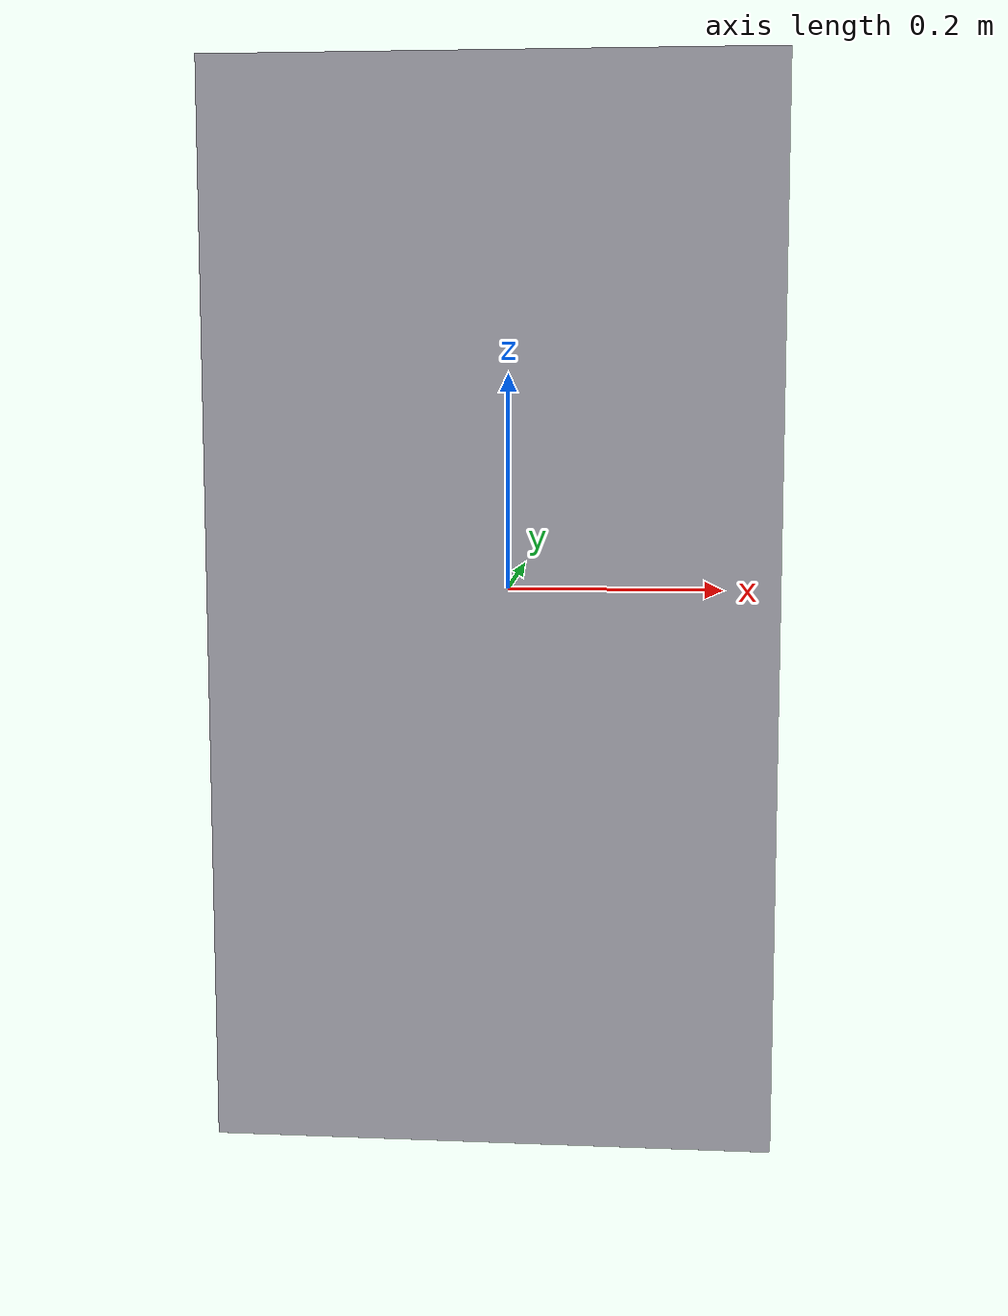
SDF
<?xml version="1.0"?>
<sdf version="1.6">
  <model name="BPCart">
    <static>true</static>
    <link name="link">
      <collision name="col">
        <geometry>
          <box>
            <size>0.48 0.38 0.92</size>
          </box>
        </geometry>
      </collision>
      <visual name="vis">
        <geometry>
          <box>
            <size>0.48 0.38 0.92</size>
          </box>
        </geometry>
        <material>
          <ambient>0.55 0.55 0.58 1</ambient>
          <diffuse>0.55 0.55 0.58 1</diffuse>
        </material>
      </visual>
    </link>
  </model>
</sdf>
